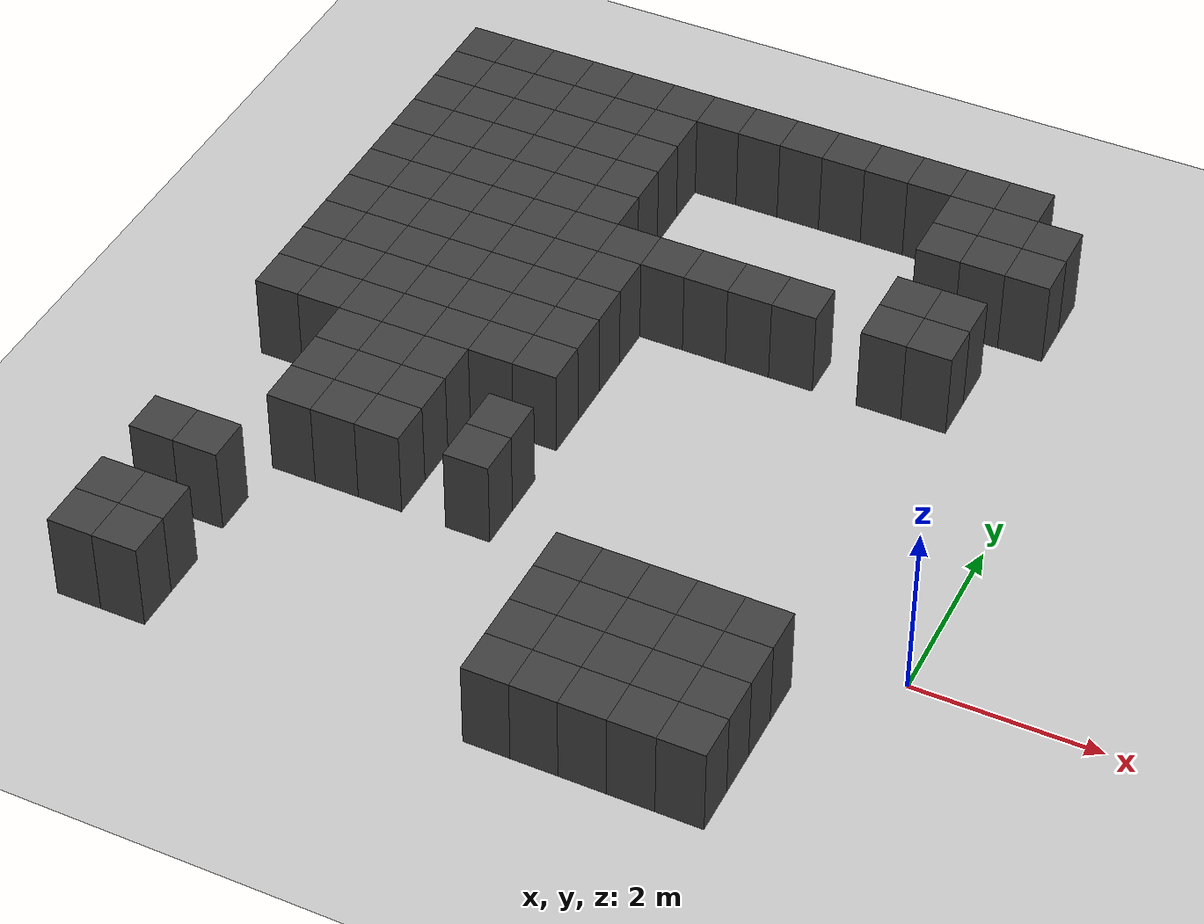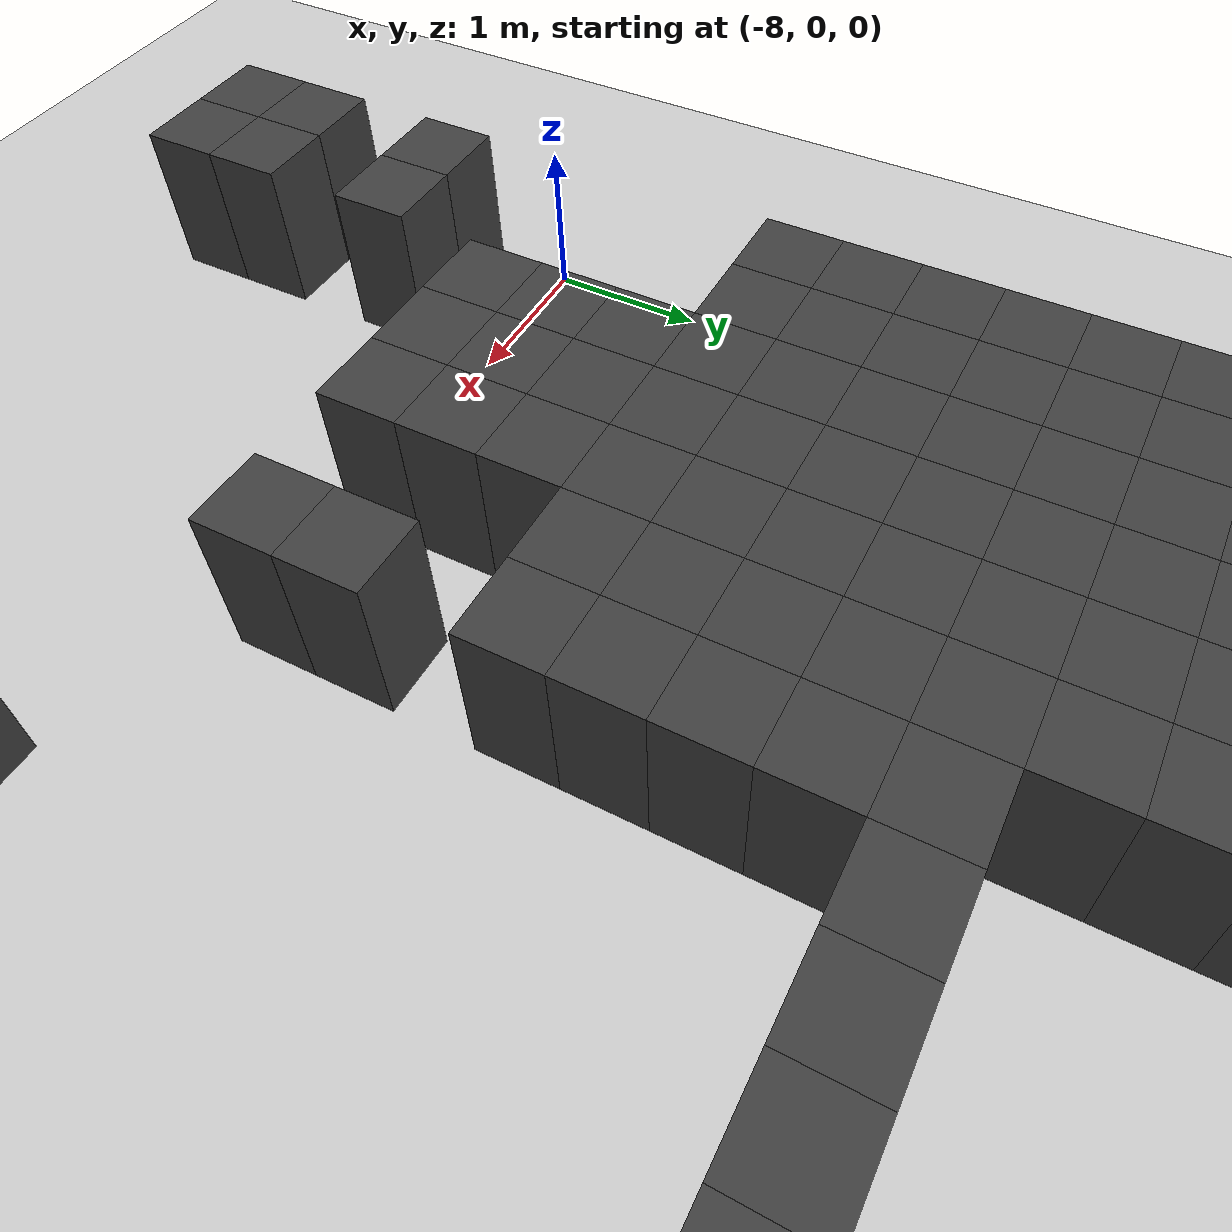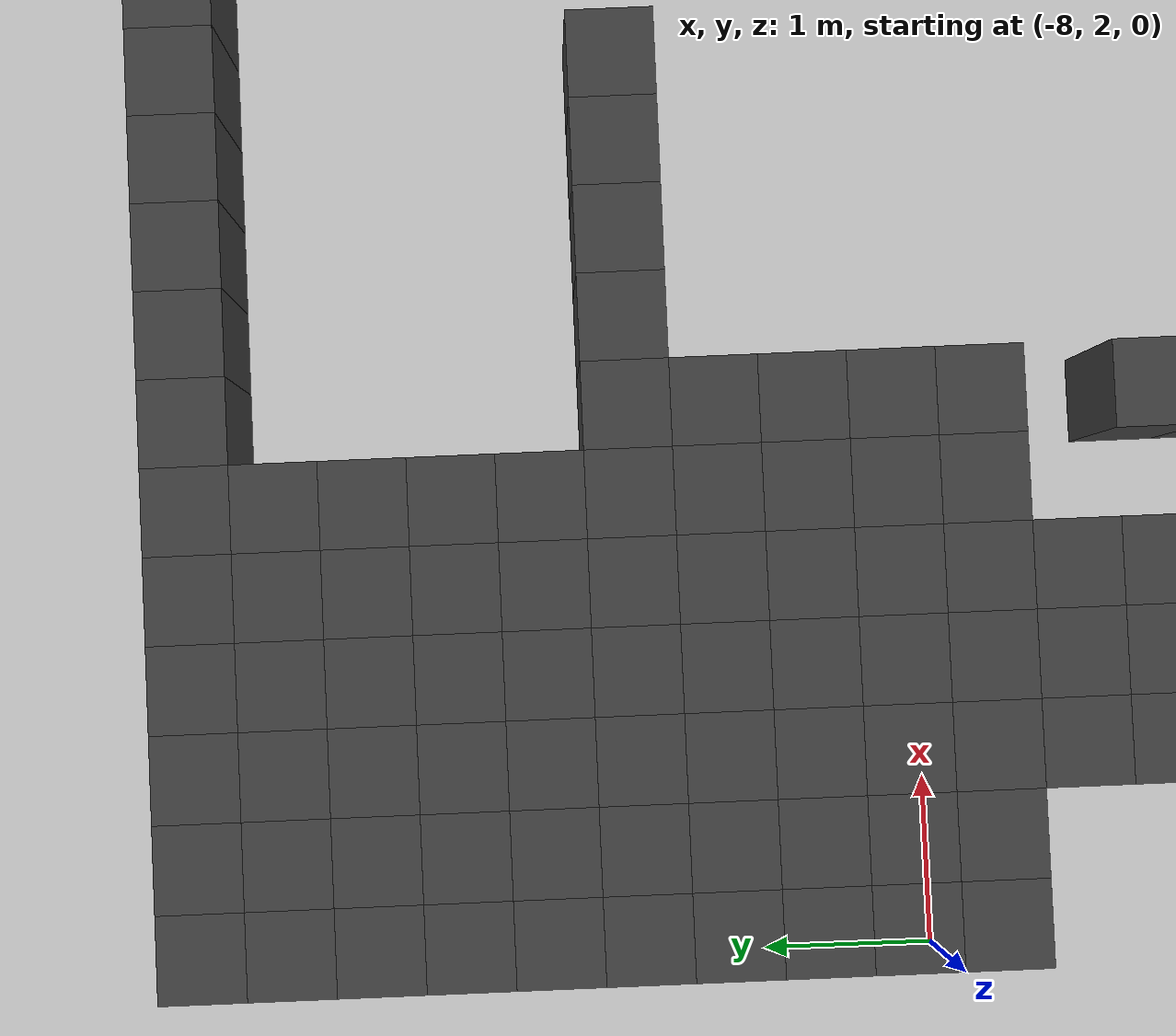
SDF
<sdf version="1.7">
 <world name="map_13364">
  <model name="ground_plane">
   <static>true</static>
   <link name="link">
    <collision name="collision">
     <geometry><plane><normal>0 0 1</normal><size>200 200</size></plane></geometry>
    </collision>
    <visual name="visual">
     <geometry><plane><normal>0 0 1</normal><size>200 200</size></plane></geometry>
     <material><ambient>0.8 0.8 0.8 1</ambient><diffuse>0.8 0.8 0.8 1</diffuse></material>
    </visual>
   </link>
  </model>
  <model name="maze_environment">
   <static>true</static>
   <link name="wall_544">
    <pose>-7.750 6.250 0.500 0 0 0</pose>
    <collision name="col"><geometry><box><size>0.5 0.5 1.0</size></box></geometry></collision>
    <visual name="vis">
     <geometry><box><size>0.5 0.5 1.0</size></box></geometry>
     <material><ambient>0.15 0.15 0.15 1</ambient><diffuse>0.25 0.25 0.25 1</diffuse></material>
    </visual>
   </link>
   <link name="wall_545">
    <pose>-7.250 6.250 0.500 0 0 0</pose>
    <collision name="col"><geometry><box><size>0.5 0.5 1.0</size></box></geometry></collision>
    <visual name="vis">
     <geometry><box><size>0.5 0.5 1.0</size></box></geometry>
     <material><ambient>0.15 0.15 0.15 1</ambient><diffuse>0.25 0.25 0.25 1</diffuse></material>
    </visual>
   </link>
   <link name="wall_546">
    <pose>-6.750 6.250 0.500 0 0 0</pose>
    <collision name="col"><geometry><box><size>0.5 0.5 1.0</size></box></geometry></collision>
    <visual name="vis">
     <geometry><box><size>0.5 0.5 1.0</size></box></geometry>
     <material><ambient>0.15 0.15 0.15 1</ambient><diffuse>0.25 0.25 0.25 1</diffuse></material>
    </visual>
   </link>
   <link name="wall_547">
    <pose>-6.250 6.250 0.500 0 0 0</pose>
    <collision name="col"><geometry><box><size>0.5 0.5 1.0</size></box></geometry></collision>
    <visual name="vis">
     <geometry><box><size>0.5 0.5 1.0</size></box></geometry>
     <material><ambient>0.15 0.15 0.15 1</ambient><diffuse>0.25 0.25 0.25 1</diffuse></material>
    </visual>
   </link>
   <link name="wall_548">
    <pose>-5.750 6.250 0.500 0 0 0</pose>
    <collision name="col"><geometry><box><size>0.5 0.5 1.0</size></box></geometry></collision>
    <visual name="vis">
     <geometry><box><size>0.5 0.5 1.0</size></box></geometry>
     <material><ambient>0.15 0.15 0.15 1</ambient><diffuse>0.25 0.25 0.25 1</diffuse></material>
    </visual>
   </link>
   <link name="wall_549">
    <pose>-5.250 6.250 0.500 0 0 0</pose>
    <collision name="col"><geometry><box><size>0.5 0.5 1.0</size></box></geometry></collision>
    <visual name="vis">
     <geometry><box><size>0.5 0.5 1.0</size></box></geometry>
     <material><ambient>0.15 0.15 0.15 1</ambient><diffuse>0.25 0.25 0.25 1</diffuse></material>
    </visual>
   </link>
   <link name="wall_550">
    <pose>-4.750 6.250 0.500 0 0 0</pose>
    <collision name="col"><geometry><box><size>0.5 0.5 1.0</size></box></geometry></collision>
    <visual name="vis">
     <geometry><box><size>0.5 0.5 1.0</size></box></geometry>
     <material><ambient>0.15 0.15 0.15 1</ambient><diffuse>0.25 0.25 0.25 1</diffuse></material>
    </visual>
   </link>
   <link name="wall_551">
    <pose>-4.250 6.250 0.500 0 0 0</pose>
    <collision name="col"><geometry><box><size>0.5 0.5 1.0</size></box></geometry></collision>
    <visual name="vis">
     <geometry><box><size>0.5 0.5 1.0</size></box></geometry>
     <material><ambient>0.15 0.15 0.15 1</ambient><diffuse>0.25 0.25 0.25 1</diffuse></material>
    </visual>
   </link>
   <link name="wall_552">
    <pose>-3.750 6.250 0.500 0 0 0</pose>
    <collision name="col"><geometry><box><size>0.5 0.5 1.0</size></box></geometry></collision>
    <visual name="vis">
     <geometry><box><size>0.5 0.5 1.0</size></box></geometry>
     <material><ambient>0.15 0.15 0.15 1</ambient><diffuse>0.25 0.25 0.25 1</diffuse></material>
    </visual>
   </link>
   <link name="wall_553">
    <pose>-3.250 6.250 0.500 0 0 0</pose>
    <collision name="col"><geometry><box><size>0.5 0.5 1.0</size></box></geometry></collision>
    <visual name="vis">
     <geometry><box><size>0.5 0.5 1.0</size></box></geometry>
     <material><ambient>0.15 0.15 0.15 1</ambient><diffuse>0.25 0.25 0.25 1</diffuse></material>
    </visual>
   </link>
   <link name="wall_554">
    <pose>-2.750 6.250 0.500 0 0 0</pose>
    <collision name="col"><geometry><box><size>0.5 0.5 1.0</size></box></geometry></collision>
    <visual name="vis">
     <geometry><box><size>0.5 0.5 1.0</size></box></geometry>
     <material><ambient>0.15 0.15 0.15 1</ambient><diffuse>0.25 0.25 0.25 1</diffuse></material>
    </visual>
   </link>
   <link name="wall_555">
    <pose>-2.250 6.250 0.500 0 0 0</pose>
    <collision name="col"><geometry><box><size>0.5 0.5 1.0</size></box></geometry></collision>
    <visual name="vis">
     <geometry><box><size>0.5 0.5 1.0</size></box></geometry>
     <material><ambient>0.15 0.15 0.15 1</ambient><diffuse>0.25 0.25 0.25 1</diffuse></material>
    </visual>
   </link>
   <link name="wall_556">
    <pose>-1.750 6.250 0.500 0 0 0</pose>
    <collision name="col"><geometry><box><size>0.5 0.5 1.0</size></box></geometry></collision>
    <visual name="vis">
     <geometry><box><size>0.5 0.5 1.0</size></box></geometry>
     <material><ambient>0.15 0.15 0.15 1</ambient><diffuse>0.25 0.25 0.25 1</diffuse></material>
    </visual>
   </link>
   <link name="wall_557">
    <pose>-1.250 6.250 0.500 0 0 0</pose>
    <collision name="col"><geometry><box><size>0.5 0.5 1.0</size></box></geometry></collision>
    <visual name="vis">
     <geometry><box><size>0.5 0.5 1.0</size></box></geometry>
     <material><ambient>0.15 0.15 0.15 1</ambient><diffuse>0.25 0.25 0.25 1</diffuse></material>
    </visual>
   </link>
   <link name="wall_576">
    <pose>-7.750 5.750 0.500 0 0 0</pose>
    <collision name="col"><geometry><box><size>0.5 0.5 1.0</size></box></geometry></collision>
    <visual name="vis">
     <geometry><box><size>0.5 0.5 1.0</size></box></geometry>
     <material><ambient>0.15 0.15 0.15 1</ambient><diffuse>0.25 0.25 0.25 1</diffuse></material>
    </visual>
   </link>
   <link name="wall_577">
    <pose>-7.250 5.750 0.500 0 0 0</pose>
    <collision name="col"><geometry><box><size>0.5 0.5 1.0</size></box></geometry></collision>
    <visual name="vis">
     <geometry><box><size>0.5 0.5 1.0</size></box></geometry>
     <material><ambient>0.15 0.15 0.15 1</ambient><diffuse>0.25 0.25 0.25 1</diffuse></material>
    </visual>
   </link>
   <link name="wall_578">
    <pose>-6.750 5.750 0.500 0 0 0</pose>
    <collision name="col"><geometry><box><size>0.5 0.5 1.0</size></box></geometry></collision>
    <visual name="vis">
     <geometry><box><size>0.5 0.5 1.0</size></box></geometry>
     <material><ambient>0.15 0.15 0.15 1</ambient><diffuse>0.25 0.25 0.25 1</diffuse></material>
    </visual>
   </link>
   <link name="wall_579">
    <pose>-6.250 5.750 0.500 0 0 0</pose>
    <collision name="col"><geometry><box><size>0.5 0.5 1.0</size></box></geometry></collision>
    <visual name="vis">
     <geometry><box><size>0.5 0.5 1.0</size></box></geometry>
     <material><ambient>0.15 0.15 0.15 1</ambient><diffuse>0.25 0.25 0.25 1</diffuse></material>
    </visual>
   </link>
   <link name="wall_580">
    <pose>-5.750 5.750 0.500 0 0 0</pose>
    <collision name="col"><geometry><box><size>0.5 0.5 1.0</size></box></geometry></collision>
    <visual name="vis">
     <geometry><box><size>0.5 0.5 1.0</size></box></geometry>
     <material><ambient>0.15 0.15 0.15 1</ambient><diffuse>0.25 0.25 0.25 1</diffuse></material>
    </visual>
   </link>
   <link name="wall_581">
    <pose>-5.250 5.750 0.500 0 0 0</pose>
    <collision name="col"><geometry><box><size>0.5 0.5 1.0</size></box></geometry></collision>
    <visual name="vis">
     <geometry><box><size>0.5 0.5 1.0</size></box></geometry>
     <material><ambient>0.15 0.15 0.15 1</ambient><diffuse>0.25 0.25 0.25 1</diffuse></material>
    </visual>
   </link>
   <link name="wall_582">
    <pose>-1.750 5.750 0.500 0 0 0</pose>
    <collision name="col"><geometry><box><size>0.5 0.5 1.0</size></box></geometry></collision>
    <visual name="vis">
     <geometry><box><size>0.5 0.5 1.0</size></box></geometry>
     <material><ambient>0.15 0.15 0.15 1</ambient><diffuse>0.25 0.25 0.25 1</diffuse></material>
    </visual>
   </link>
   <link name="wall_583">
    <pose>-1.250 5.750 0.500 0 0 0</pose>
    <collision name="col"><geometry><box><size>0.5 0.5 1.0</size></box></geometry></collision>
    <visual name="vis">
     <geometry><box><size>0.5 0.5 1.0</size></box></geometry>
     <material><ambient>0.15 0.15 0.15 1</ambient><diffuse>0.25 0.25 0.25 1</diffuse></material>
    </visual>
   </link>
   <link name="wall_584">
    <pose>-0.750 5.750 0.500 0 0 0</pose>
    <collision name="col"><geometry><box><size>0.5 0.5 1.0</size></box></geometry></collision>
    <visual name="vis">
     <geometry><box><size>0.5 0.5 1.0</size></box></geometry>
     <material><ambient>0.15 0.15 0.15 1</ambient><diffuse>0.25 0.25 0.25 1</diffuse></material>
    </visual>
   </link>
   <link name="wall_603">
    <pose>-7.750 5.250 0.500 0 0 0</pose>
    <collision name="col"><geometry><box><size>0.5 0.5 1.0</size></box></geometry></collision>
    <visual name="vis">
     <geometry><box><size>0.5 0.5 1.0</size></box></geometry>
     <material><ambient>0.15 0.15 0.15 1</ambient><diffuse>0.25 0.25 0.25 1</diffuse></material>
    </visual>
   </link>
   <link name="wall_604">
    <pose>-7.250 5.250 0.500 0 0 0</pose>
    <collision name="col"><geometry><box><size>0.5 0.5 1.0</size></box></geometry></collision>
    <visual name="vis">
     <geometry><box><size>0.5 0.5 1.0</size></box></geometry>
     <material><ambient>0.15 0.15 0.15 1</ambient><diffuse>0.25 0.25 0.25 1</diffuse></material>
    </visual>
   </link>
   <link name="wall_605">
    <pose>-6.750 5.250 0.500 0 0 0</pose>
    <collision name="col"><geometry><box><size>0.5 0.5 1.0</size></box></geometry></collision>
    <visual name="vis">
     <geometry><box><size>0.5 0.5 1.0</size></box></geometry>
     <material><ambient>0.15 0.15 0.15 1</ambient><diffuse>0.25 0.25 0.25 1</diffuse></material>
    </visual>
   </link>
   <link name="wall_606">
    <pose>-6.250 5.250 0.500 0 0 0</pose>
    <collision name="col"><geometry><box><size>0.5 0.5 1.0</size></box></geometry></collision>
    <visual name="vis">
     <geometry><box><size>0.5 0.5 1.0</size></box></geometry>
     <material><ambient>0.15 0.15 0.15 1</ambient><diffuse>0.25 0.25 0.25 1</diffuse></material>
    </visual>
   </link>
   <link name="wall_607">
    <pose>-5.750 5.250 0.500 0 0 0</pose>
    <collision name="col"><geometry><box><size>0.5 0.5 1.0</size></box></geometry></collision>
    <visual name="vis">
     <geometry><box><size>0.5 0.5 1.0</size></box></geometry>
     <material><ambient>0.15 0.15 0.15 1</ambient><diffuse>0.25 0.25 0.25 1</diffuse></material>
    </visual>
   </link>
   <link name="wall_608">
    <pose>-5.250 5.250 0.500 0 0 0</pose>
    <collision name="col"><geometry><box><size>0.5 0.5 1.0</size></box></geometry></collision>
    <visual name="vis">
     <geometry><box><size>0.5 0.5 1.0</size></box></geometry>
     <material><ambient>0.15 0.15 0.15 1</ambient><diffuse>0.25 0.25 0.25 1</diffuse></material>
    </visual>
   </link>
   <link name="wall_609">
    <pose>-1.750 5.250 0.500 0 0 0</pose>
    <collision name="col"><geometry><box><size>0.5 0.5 1.0</size></box></geometry></collision>
    <visual name="vis">
     <geometry><box><size>0.5 0.5 1.0</size></box></geometry>
     <material><ambient>0.15 0.15 0.15 1</ambient><diffuse>0.25 0.25 0.25 1</diffuse></material>
    </visual>
   </link>
   <link name="wall_610">
    <pose>-1.250 5.250 0.500 0 0 0</pose>
    <collision name="col"><geometry><box><size>0.5 0.5 1.0</size></box></geometry></collision>
    <visual name="vis">
     <geometry><box><size>0.5 0.5 1.0</size></box></geometry>
     <material><ambient>0.15 0.15 0.15 1</ambient><diffuse>0.25 0.25 0.25 1</diffuse></material>
    </visual>
   </link>
   <link name="wall_611">
    <pose>-0.750 5.250 0.500 0 0 0</pose>
    <collision name="col"><geometry><box><size>0.5 0.5 1.0</size></box></geometry></collision>
    <visual name="vis">
     <geometry><box><size>0.5 0.5 1.0</size></box></geometry>
     <material><ambient>0.15 0.15 0.15 1</ambient><diffuse>0.25 0.25 0.25 1</diffuse></material>
    </visual>
   </link>
   <link name="wall_637">
    <pose>-7.750 4.750 0.500 0 0 0</pose>
    <collision name="col"><geometry><box><size>0.5 0.5 1.0</size></box></geometry></collision>
    <visual name="vis">
     <geometry><box><size>0.5 0.5 1.0</size></box></geometry>
     <material><ambient>0.15 0.15 0.15 1</ambient><diffuse>0.25 0.25 0.25 1</diffuse></material>
    </visual>
   </link>
   <link name="wall_638">
    <pose>-7.250 4.750 0.500 0 0 0</pose>
    <collision name="col"><geometry><box><size>0.5 0.5 1.0</size></box></geometry></collision>
    <visual name="vis">
     <geometry><box><size>0.5 0.5 1.0</size></box></geometry>
     <material><ambient>0.15 0.15 0.15 1</ambient><diffuse>0.25 0.25 0.25 1</diffuse></material>
    </visual>
   </link>
   <link name="wall_639">
    <pose>-6.750 4.750 0.500 0 0 0</pose>
    <collision name="col"><geometry><box><size>0.5 0.5 1.0</size></box></geometry></collision>
    <visual name="vis">
     <geometry><box><size>0.5 0.5 1.0</size></box></geometry>
     <material><ambient>0.15 0.15 0.15 1</ambient><diffuse>0.25 0.25 0.25 1</diffuse></material>
    </visual>
   </link>
   <link name="wall_640">
    <pose>-6.250 4.750 0.500 0 0 0</pose>
    <collision name="col"><geometry><box><size>0.5 0.5 1.0</size></box></geometry></collision>
    <visual name="vis">
     <geometry><box><size>0.5 0.5 1.0</size></box></geometry>
     <material><ambient>0.15 0.15 0.15 1</ambient><diffuse>0.25 0.25 0.25 1</diffuse></material>
    </visual>
   </link>
   <link name="wall_641">
    <pose>-5.750 4.750 0.500 0 0 0</pose>
    <collision name="col"><geometry><box><size>0.5 0.5 1.0</size></box></geometry></collision>
    <visual name="vis">
     <geometry><box><size>0.5 0.5 1.0</size></box></geometry>
     <material><ambient>0.15 0.15 0.15 1</ambient><diffuse>0.25 0.25 0.25 1</diffuse></material>
    </visual>
   </link>
   <link name="wall_642">
    <pose>-5.250 4.750 0.500 0 0 0</pose>
    <collision name="col"><geometry><box><size>0.5 0.5 1.0</size></box></geometry></collision>
    <visual name="vis">
     <geometry><box><size>0.5 0.5 1.0</size></box></geometry>
     <material><ambient>0.15 0.15 0.15 1</ambient><diffuse>0.25 0.25 0.25 1</diffuse></material>
    </visual>
   </link>
   <link name="wall_657">
    <pose>-7.750 4.250 0.500 0 0 0</pose>
    <collision name="col"><geometry><box><size>0.5 0.5 1.0</size></box></geometry></collision>
    <visual name="vis">
     <geometry><box><size>0.5 0.5 1.0</size></box></geometry>
     <material><ambient>0.15 0.15 0.15 1</ambient><diffuse>0.25 0.25 0.25 1</diffuse></material>
    </visual>
   </link>
   <link name="wall_658">
    <pose>-7.250 4.250 0.500 0 0 0</pose>
    <collision name="col"><geometry><box><size>0.5 0.5 1.0</size></box></geometry></collision>
    <visual name="vis">
     <geometry><box><size>0.5 0.5 1.0</size></box></geometry>
     <material><ambient>0.15 0.15 0.15 1</ambient><diffuse>0.25 0.25 0.25 1</diffuse></material>
    </visual>
   </link>
   <link name="wall_659">
    <pose>-6.750 4.250 0.500 0 0 0</pose>
    <collision name="col"><geometry><box><size>0.5 0.5 1.0</size></box></geometry></collision>
    <visual name="vis">
     <geometry><box><size>0.5 0.5 1.0</size></box></geometry>
     <material><ambient>0.15 0.15 0.15 1</ambient><diffuse>0.25 0.25 0.25 1</diffuse></material>
    </visual>
   </link>
   <link name="wall_660">
    <pose>-6.250 4.250 0.500 0 0 0</pose>
    <collision name="col"><geometry><box><size>0.5 0.5 1.0</size></box></geometry></collision>
    <visual name="vis">
     <geometry><box><size>0.5 0.5 1.0</size></box></geometry>
     <material><ambient>0.15 0.15 0.15 1</ambient><diffuse>0.25 0.25 0.25 1</diffuse></material>
    </visual>
   </link>
   <link name="wall_661">
    <pose>-5.750 4.250 0.500 0 0 0</pose>
    <collision name="col"><geometry><box><size>0.5 0.5 1.0</size></box></geometry></collision>
    <visual name="vis">
     <geometry><box><size>0.5 0.5 1.0</size></box></geometry>
     <material><ambient>0.15 0.15 0.15 1</ambient><diffuse>0.25 0.25 0.25 1</diffuse></material>
    </visual>
   </link>
   <link name="wall_662">
    <pose>-5.250 4.250 0.500 0 0 0</pose>
    <collision name="col"><geometry><box><size>0.5 0.5 1.0</size></box></geometry></collision>
    <visual name="vis">
     <geometry><box><size>0.5 0.5 1.0</size></box></geometry>
     <material><ambient>0.15 0.15 0.15 1</ambient><diffuse>0.25 0.25 0.25 1</diffuse></material>
    </visual>
   </link>
   <link name="wall_663">
    <pose>-1.750 4.250 0.500 0 0 0</pose>
    <collision name="col"><geometry><box><size>0.5 0.5 1.0</size></box></geometry></collision>
    <visual name="vis">
     <geometry><box><size>0.5 0.5 1.0</size></box></geometry>
     <material><ambient>0.15 0.15 0.15 1</ambient><diffuse>0.25 0.25 0.25 1</diffuse></material>
    </visual>
   </link>
   <link name="wall_664">
    <pose>-1.250 4.250 0.500 0 0 0</pose>
    <collision name="col"><geometry><box><size>0.5 0.5 1.0</size></box></geometry></collision>
    <visual name="vis">
     <geometry><box><size>0.5 0.5 1.0</size></box></geometry>
     <material><ambient>0.15 0.15 0.15 1</ambient><diffuse>0.25 0.25 0.25 1</diffuse></material>
    </visual>
   </link>
   <link name="wall_684">
    <pose>-7.750 3.750 0.500 0 0 0</pose>
    <collision name="col"><geometry><box><size>0.5 0.5 1.0</size></box></geometry></collision>
    <visual name="vis">
     <geometry><box><size>0.5 0.5 1.0</size></box></geometry>
     <material><ambient>0.15 0.15 0.15 1</ambient><diffuse>0.25 0.25 0.25 1</diffuse></material>
    </visual>
   </link>
   <link name="wall_685">
    <pose>-7.250 3.750 0.500 0 0 0</pose>
    <collision name="col"><geometry><box><size>0.5 0.5 1.0</size></box></geometry></collision>
    <visual name="vis">
     <geometry><box><size>0.5 0.5 1.0</size></box></geometry>
     <material><ambient>0.15 0.15 0.15 1</ambient><diffuse>0.25 0.25 0.25 1</diffuse></material>
    </visual>
   </link>
   <link name="wall_686">
    <pose>-6.750 3.750 0.500 0 0 0</pose>
    <collision name="col"><geometry><box><size>0.5 0.5 1.0</size></box></geometry></collision>
    <visual name="vis">
     <geometry><box><size>0.5 0.5 1.0</size></box></geometry>
     <material><ambient>0.15 0.15 0.15 1</ambient><diffuse>0.25 0.25 0.25 1</diffuse></material>
    </visual>
   </link>
   <link name="wall_687">
    <pose>-6.250 3.750 0.500 0 0 0</pose>
    <collision name="col"><geometry><box><size>0.5 0.5 1.0</size></box></geometry></collision>
    <visual name="vis">
     <geometry><box><size>0.5 0.5 1.0</size></box></geometry>
     <material><ambient>0.15 0.15 0.15 1</ambient><diffuse>0.25 0.25 0.25 1</diffuse></material>
    </visual>
   </link>
   <link name="wall_688">
    <pose>-5.750 3.750 0.500 0 0 0</pose>
    <collision name="col"><geometry><box><size>0.5 0.5 1.0</size></box></geometry></collision>
    <visual name="vis">
     <geometry><box><size>0.5 0.5 1.0</size></box></geometry>
     <material><ambient>0.15 0.15 0.15 1</ambient><diffuse>0.25 0.25 0.25 1</diffuse></material>
    </visual>
   </link>
   <link name="wall_689">
    <pose>-5.250 3.750 0.500 0 0 0</pose>
    <collision name="col"><geometry><box><size>0.5 0.5 1.0</size></box></geometry></collision>
    <visual name="vis">
     <geometry><box><size>0.5 0.5 1.0</size></box></geometry>
     <material><ambient>0.15 0.15 0.15 1</ambient><diffuse>0.25 0.25 0.25 1</diffuse></material>
    </visual>
   </link>
   <link name="wall_690">
    <pose>-4.750 3.750 0.500 0 0 0</pose>
    <collision name="col"><geometry><box><size>0.5 0.5 1.0</size></box></geometry></collision>
    <visual name="vis">
     <geometry><box><size>0.5 0.5 1.0</size></box></geometry>
     <material><ambient>0.15 0.15 0.15 1</ambient><diffuse>0.25 0.25 0.25 1</diffuse></material>
    </visual>
   </link>
   <link name="wall_691">
    <pose>-4.250 3.750 0.500 0 0 0</pose>
    <collision name="col"><geometry><box><size>0.5 0.5 1.0</size></box></geometry></collision>
    <visual name="vis">
     <geometry><box><size>0.5 0.5 1.0</size></box></geometry>
     <material><ambient>0.15 0.15 0.15 1</ambient><diffuse>0.25 0.25 0.25 1</diffuse></material>
    </visual>
   </link>
   <link name="wall_692">
    <pose>-3.750 3.750 0.500 0 0 0</pose>
    <collision name="col"><geometry><box><size>0.5 0.5 1.0</size></box></geometry></collision>
    <visual name="vis">
     <geometry><box><size>0.5 0.5 1.0</size></box></geometry>
     <material><ambient>0.15 0.15 0.15 1</ambient><diffuse>0.25 0.25 0.25 1</diffuse></material>
    </visual>
   </link>
   <link name="wall_693">
    <pose>-3.250 3.750 0.500 0 0 0</pose>
    <collision name="col"><geometry><box><size>0.5 0.5 1.0</size></box></geometry></collision>
    <visual name="vis">
     <geometry><box><size>0.5 0.5 1.0</size></box></geometry>
     <material><ambient>0.15 0.15 0.15 1</ambient><diffuse>0.25 0.25 0.25 1</diffuse></material>
    </visual>
   </link>
   <link name="wall_694">
    <pose>-2.750 3.750 0.500 0 0 0</pose>
    <collision name="col"><geometry><box><size>0.5 0.5 1.0</size></box></geometry></collision>
    <visual name="vis">
     <geometry><box><size>0.5 0.5 1.0</size></box></geometry>
     <material><ambient>0.15 0.15 0.15 1</ambient><diffuse>0.25 0.25 0.25 1</diffuse></material>
    </visual>
   </link>
   <link name="wall_695">
    <pose>-1.750 3.750 0.500 0 0 0</pose>
    <collision name="col"><geometry><box><size>0.5 0.5 1.0</size></box></geometry></collision>
    <visual name="vis">
     <geometry><box><size>0.5 0.5 1.0</size></box></geometry>
     <material><ambient>0.15 0.15 0.15 1</ambient><diffuse>0.25 0.25 0.25 1</diffuse></material>
    </visual>
   </link>
   <link name="wall_696">
    <pose>-1.250 3.750 0.500 0 0 0</pose>
    <collision name="col"><geometry><box><size>0.5 0.5 1.0</size></box></geometry></collision>
    <visual name="vis">
     <geometry><box><size>0.5 0.5 1.0</size></box></geometry>
     <material><ambient>0.15 0.15 0.15 1</ambient><diffuse>0.25 0.25 0.25 1</diffuse></material>
    </visual>
   </link>
   <link name="wall_716">
    <pose>-7.750 3.250 0.500 0 0 0</pose>
    <collision name="col"><geometry><box><size>0.5 0.5 1.0</size></box></geometry></collision>
    <visual name="vis">
     <geometry><box><size>0.5 0.5 1.0</size></box></geometry>
     <material><ambient>0.15 0.15 0.15 1</ambient><diffuse>0.25 0.25 0.25 1</diffuse></material>
    </visual>
   </link>
   <link name="wall_717">
    <pose>-7.250 3.250 0.500 0 0 0</pose>
    <collision name="col"><geometry><box><size>0.5 0.5 1.0</size></box></geometry></collision>
    <visual name="vis">
     <geometry><box><size>0.5 0.5 1.0</size></box></geometry>
     <material><ambient>0.15 0.15 0.15 1</ambient><diffuse>0.25 0.25 0.25 1</diffuse></material>
    </visual>
   </link>
   <link name="wall_718">
    <pose>-6.750 3.250 0.500 0 0 0</pose>
    <collision name="col"><geometry><box><size>0.5 0.5 1.0</size></box></geometry></collision>
    <visual name="vis">
     <geometry><box><size>0.5 0.5 1.0</size></box></geometry>
     <material><ambient>0.15 0.15 0.15 1</ambient><diffuse>0.25 0.25 0.25 1</diffuse></material>
    </visual>
   </link>
   <link name="wall_719">
    <pose>-6.250 3.250 0.500 0 0 0</pose>
    <collision name="col"><geometry><box><size>0.5 0.5 1.0</size></box></geometry></collision>
    <visual name="vis">
     <geometry><box><size>0.5 0.5 1.0</size></box></geometry>
     <material><ambient>0.15 0.15 0.15 1</ambient><diffuse>0.25 0.25 0.25 1</diffuse></material>
    </visual>
   </link>
   <link name="wall_720">
    <pose>-5.750 3.250 0.500 0 0 0</pose>
    <collision name="col"><geometry><box><size>0.5 0.5 1.0</size></box></geometry></collision>
    <visual name="vis">
     <geometry><box><size>0.5 0.5 1.0</size></box></geometry>
     <material><ambient>0.15 0.15 0.15 1</ambient><diffuse>0.25 0.25 0.25 1</diffuse></material>
    </visual>
   </link>
   <link name="wall_721">
    <pose>-5.250 3.250 0.500 0 0 0</pose>
    <collision name="col"><geometry><box><size>0.5 0.5 1.0</size></box></geometry></collision>
    <visual name="vis">
     <geometry><box><size>0.5 0.5 1.0</size></box></geometry>
     <material><ambient>0.15 0.15 0.15 1</ambient><diffuse>0.25 0.25 0.25 1</diffuse></material>
    </visual>
   </link>
   <link name="wall_722">
    <pose>-4.750 3.250 0.500 0 0 0</pose>
    <collision name="col"><geometry><box><size>0.5 0.5 1.0</size></box></geometry></collision>
    <visual name="vis">
     <geometry><box><size>0.5 0.5 1.0</size></box></geometry>
     <material><ambient>0.15 0.15 0.15 1</ambient><diffuse>0.25 0.25 0.25 1</diffuse></material>
    </visual>
   </link>
   <link name="wall_749">
    <pose>-7.750 2.750 0.500 0 0 0</pose>
    <collision name="col"><geometry><box><size>0.5 0.5 1.0</size></box></geometry></collision>
    <visual name="vis">
     <geometry><box><size>0.5 0.5 1.0</size></box></geometry>
     <material><ambient>0.15 0.15 0.15 1</ambient><diffuse>0.25 0.25 0.25 1</diffuse></material>
    </visual>
   </link>
   <link name="wall_750">
    <pose>-7.250 2.750 0.500 0 0 0</pose>
    <collision name="col"><geometry><box><size>0.5 0.5 1.0</size></box></geometry></collision>
    <visual name="vis">
     <geometry><box><size>0.5 0.5 1.0</size></box></geometry>
     <material><ambient>0.15 0.15 0.15 1</ambient><diffuse>0.25 0.25 0.25 1</diffuse></material>
    </visual>
   </link>
   <link name="wall_751">
    <pose>-6.750 2.750 0.500 0 0 0</pose>
    <collision name="col"><geometry><box><size>0.5 0.5 1.0</size></box></geometry></collision>
    <visual name="vis">
     <geometry><box><size>0.5 0.5 1.0</size></box></geometry>
     <material><ambient>0.15 0.15 0.15 1</ambient><diffuse>0.25 0.25 0.25 1</diffuse></material>
    </visual>
   </link>
   <link name="wall_752">
    <pose>-6.250 2.750 0.500 0 0 0</pose>
    <collision name="col"><geometry><box><size>0.5 0.5 1.0</size></box></geometry></collision>
    <visual name="vis">
     <geometry><box><size>0.5 0.5 1.0</size></box></geometry>
     <material><ambient>0.15 0.15 0.15 1</ambient><diffuse>0.25 0.25 0.25 1</diffuse></material>
    </visual>
   </link>
   <link name="wall_753">
    <pose>-5.750 2.750 0.500 0 0 0</pose>
    <collision name="col"><geometry><box><size>0.5 0.5 1.0</size></box></geometry></collision>
    <visual name="vis">
     <geometry><box><size>0.5 0.5 1.0</size></box></geometry>
     <material><ambient>0.15 0.15 0.15 1</ambient><diffuse>0.25 0.25 0.25 1</diffuse></material>
    </visual>
   </link>
   <link name="wall_754">
    <pose>-5.250 2.750 0.500 0 0 0</pose>
    <collision name="col"><geometry><box><size>0.5 0.5 1.0</size></box></geometry></collision>
    <visual name="vis">
     <geometry><box><size>0.5 0.5 1.0</size></box></geometry>
     <material><ambient>0.15 0.15 0.15 1</ambient><diffuse>0.25 0.25 0.25 1</diffuse></material>
    </visual>
   </link>
   <link name="wall_755">
    <pose>-4.750 2.750 0.500 0 0 0</pose>
    <collision name="col"><geometry><box><size>0.5 0.5 1.0</size></box></geometry></collision>
    <visual name="vis">
     <geometry><box><size>0.5 0.5 1.0</size></box></geometry>
     <material><ambient>0.15 0.15 0.15 1</ambient><diffuse>0.25 0.25 0.25 1</diffuse></material>
    </visual>
   </link>
   <link name="wall_780">
    <pose>-7.750 2.250 0.500 0 0 0</pose>
    <collision name="col"><geometry><box><size>0.5 0.5 1.0</size></box></geometry></collision>
    <visual name="vis">
     <geometry><box><size>0.5 0.5 1.0</size></box></geometry>
     <material><ambient>0.15 0.15 0.15 1</ambient><diffuse>0.25 0.25 0.25 1</diffuse></material>
    </visual>
   </link>
   <link name="wall_781">
    <pose>-7.250 2.250 0.500 0 0 0</pose>
    <collision name="col"><geometry><box><size>0.5 0.5 1.0</size></box></geometry></collision>
    <visual name="vis">
     <geometry><box><size>0.5 0.5 1.0</size></box></geometry>
     <material><ambient>0.15 0.15 0.15 1</ambient><diffuse>0.25 0.25 0.25 1</diffuse></material>
    </visual>
   </link>
   <link name="wall_782">
    <pose>-6.750 2.250 0.500 0 0 0</pose>
    <collision name="col"><geometry><box><size>0.5 0.5 1.0</size></box></geometry></collision>
    <visual name="vis">
     <geometry><box><size>0.5 0.5 1.0</size></box></geometry>
     <material><ambient>0.15 0.15 0.15 1</ambient><diffuse>0.25 0.25 0.25 1</diffuse></material>
    </visual>
   </link>
   <link name="wall_783">
    <pose>-6.250 2.250 0.500 0 0 0</pose>
    <collision name="col"><geometry><box><size>0.5 0.5 1.0</size></box></geometry></collision>
    <visual name="vis">
     <geometry><box><size>0.5 0.5 1.0</size></box></geometry>
     <material><ambient>0.15 0.15 0.15 1</ambient><diffuse>0.25 0.25 0.25 1</diffuse></material>
    </visual>
   </link>
   <link name="wall_784">
    <pose>-5.750 2.250 0.500 0 0 0</pose>
    <collision name="col"><geometry><box><size>0.5 0.5 1.0</size></box></geometry></collision>
    <visual name="vis">
     <geometry><box><size>0.5 0.5 1.0</size></box></geometry>
     <material><ambient>0.15 0.15 0.15 1</ambient><diffuse>0.25 0.25 0.25 1</diffuse></material>
    </visual>
   </link>
   <link name="wall_785">
    <pose>-5.250 2.250 0.500 0 0 0</pose>
    <collision name="col"><geometry><box><size>0.5 0.5 1.0</size></box></geometry></collision>
    <visual name="vis">
     <geometry><box><size>0.5 0.5 1.0</size></box></geometry>
     <material><ambient>0.15 0.15 0.15 1</ambient><diffuse>0.25 0.25 0.25 1</diffuse></material>
    </visual>
   </link>
   <link name="wall_786">
    <pose>-4.750 2.250 0.500 0 0 0</pose>
    <collision name="col"><geometry><box><size>0.5 0.5 1.0</size></box></geometry></collision>
    <visual name="vis">
     <geometry><box><size>0.5 0.5 1.0</size></box></geometry>
     <material><ambient>0.15 0.15 0.15 1</ambient><diffuse>0.25 0.25 0.25 1</diffuse></material>
    </visual>
   </link>
   <link name="wall_811">
    <pose>-7.750 1.750 0.500 0 0 0</pose>
    <collision name="col"><geometry><box><size>0.5 0.5 1.0</size></box></geometry></collision>
    <visual name="vis">
     <geometry><box><size>0.5 0.5 1.0</size></box></geometry>
     <material><ambient>0.15 0.15 0.15 1</ambient><diffuse>0.25 0.25 0.25 1</diffuse></material>
    </visual>
   </link>
   <link name="wall_812">
    <pose>-7.250 1.750 0.500 0 0 0</pose>
    <collision name="col"><geometry><box><size>0.5 0.5 1.0</size></box></geometry></collision>
    <visual name="vis">
     <geometry><box><size>0.5 0.5 1.0</size></box></geometry>
     <material><ambient>0.15 0.15 0.15 1</ambient><diffuse>0.25 0.25 0.25 1</diffuse></material>
    </visual>
   </link>
   <link name="wall_813">
    <pose>-6.750 1.750 0.500 0 0 0</pose>
    <collision name="col"><geometry><box><size>0.5 0.5 1.0</size></box></geometry></collision>
    <visual name="vis">
     <geometry><box><size>0.5 0.5 1.0</size></box></geometry>
     <material><ambient>0.15 0.15 0.15 1</ambient><diffuse>0.25 0.25 0.25 1</diffuse></material>
    </visual>
   </link>
   <link name="wall_814">
    <pose>-6.250 1.750 0.500 0 0 0</pose>
    <collision name="col"><geometry><box><size>0.5 0.5 1.0</size></box></geometry></collision>
    <visual name="vis">
     <geometry><box><size>0.5 0.5 1.0</size></box></geometry>
     <material><ambient>0.15 0.15 0.15 1</ambient><diffuse>0.25 0.25 0.25 1</diffuse></material>
    </visual>
   </link>
   <link name="wall_815">
    <pose>-5.750 1.750 0.500 0 0 0</pose>
    <collision name="col"><geometry><box><size>0.5 0.5 1.0</size></box></geometry></collision>
    <visual name="vis">
     <geometry><box><size>0.5 0.5 1.0</size></box></geometry>
     <material><ambient>0.15 0.15 0.15 1</ambient><diffuse>0.25 0.25 0.25 1</diffuse></material>
    </visual>
   </link>
   <link name="wall_816">
    <pose>-5.250 1.750 0.500 0 0 0</pose>
    <collision name="col"><geometry><box><size>0.5 0.5 1.0</size></box></geometry></collision>
    <visual name="vis">
     <geometry><box><size>0.5 0.5 1.0</size></box></geometry>
     <material><ambient>0.15 0.15 0.15 1</ambient><diffuse>0.25 0.25 0.25 1</diffuse></material>
    </visual>
   </link>
   <link name="wall_817">
    <pose>-4.750 1.750 0.500 0 0 0</pose>
    <collision name="col"><geometry><box><size>0.5 0.5 1.0</size></box></geometry></collision>
    <visual name="vis">
     <geometry><box><size>0.5 0.5 1.0</size></box></geometry>
     <material><ambient>0.15 0.15 0.15 1</ambient><diffuse>0.25 0.25 0.25 1</diffuse></material>
    </visual>
   </link>
   <link name="wall_837">
    <pose>-6.750 1.250 0.500 0 0 0</pose>
    <collision name="col"><geometry><box><size>0.5 0.5 1.0</size></box></geometry></collision>
    <visual name="vis">
     <geometry><box><size>0.5 0.5 1.0</size></box></geometry>
     <material><ambient>0.15 0.15 0.15 1</ambient><diffuse>0.25 0.25 0.25 1</diffuse></material>
    </visual>
   </link>
   <link name="wall_838">
    <pose>-6.250 1.250 0.500 0 0 0</pose>
    <collision name="col"><geometry><box><size>0.5 0.5 1.0</size></box></geometry></collision>
    <visual name="vis">
     <geometry><box><size>0.5 0.5 1.0</size></box></geometry>
     <material><ambient>0.15 0.15 0.15 1</ambient><diffuse>0.25 0.25 0.25 1</diffuse></material>
    </visual>
   </link>
   <link name="wall_839">
    <pose>-5.750 1.250 0.500 0 0 0</pose>
    <collision name="col"><geometry><box><size>0.5 0.5 1.0</size></box></geometry></collision>
    <visual name="vis">
     <geometry><box><size>0.5 0.5 1.0</size></box></geometry>
     <material><ambient>0.15 0.15 0.15 1</ambient><diffuse>0.25 0.25 0.25 1</diffuse></material>
    </visual>
   </link>
   <link name="wall_859">
    <pose>-6.750 0.750 0.500 0 0 0</pose>
    <collision name="col"><geometry><box><size>0.5 0.5 1.0</size></box></geometry></collision>
    <visual name="vis">
     <geometry><box><size>0.5 0.5 1.0</size></box></geometry>
     <material><ambient>0.15 0.15 0.15 1</ambient><diffuse>0.25 0.25 0.25 1</diffuse></material>
    </visual>
   </link>
   <link name="wall_860">
    <pose>-6.250 0.750 0.500 0 0 0</pose>
    <collision name="col"><geometry><box><size>0.5 0.5 1.0</size></box></geometry></collision>
    <visual name="vis">
     <geometry><box><size>0.5 0.5 1.0</size></box></geometry>
     <material><ambient>0.15 0.15 0.15 1</ambient><diffuse>0.25 0.25 0.25 1</diffuse></material>
    </visual>
   </link>
   <link name="wall_861">
    <pose>-5.750 0.750 0.500 0 0 0</pose>
    <collision name="col"><geometry><box><size>0.5 0.5 1.0</size></box></geometry></collision>
    <visual name="vis">
     <geometry><box><size>0.5 0.5 1.0</size></box></geometry>
     <material><ambient>0.15 0.15 0.15 1</ambient><diffuse>0.25 0.25 0.25 1</diffuse></material>
    </visual>
   </link>
   <link name="wall_862">
    <pose>-4.750 0.750 0.500 0 0 0</pose>
    <collision name="col"><geometry><box><size>0.5 0.5 1.0</size></box></geometry></collision>
    <visual name="vis">
     <geometry><box><size>0.5 0.5 1.0</size></box></geometry>
     <material><ambient>0.15 0.15 0.15 1</ambient><diffuse>0.25 0.25 0.25 1</diffuse></material>
    </visual>
   </link>
   <link name="wall_887">
    <pose>-6.750 0.250 0.500 0 0 0</pose>
    <collision name="col"><geometry><box><size>0.5 0.5 1.0</size></box></geometry></collision>
    <visual name="vis">
     <geometry><box><size>0.5 0.5 1.0</size></box></geometry>
     <material><ambient>0.15 0.15 0.15 1</ambient><diffuse>0.25 0.25 0.25 1</diffuse></material>
    </visual>
   </link>
   <link name="wall_888">
    <pose>-6.250 0.250 0.500 0 0 0</pose>
    <collision name="col"><geometry><box><size>0.5 0.5 1.0</size></box></geometry></collision>
    <visual name="vis">
     <geometry><box><size>0.5 0.5 1.0</size></box></geometry>
     <material><ambient>0.15 0.15 0.15 1</ambient><diffuse>0.25 0.25 0.25 1</diffuse></material>
    </visual>
   </link>
   <link name="wall_889">
    <pose>-5.750 0.250 0.500 0 0 0</pose>
    <collision name="col"><geometry><box><size>0.5 0.5 1.0</size></box></geometry></collision>
    <visual name="vis">
     <geometry><box><size>0.5 0.5 1.0</size></box></geometry>
     <material><ambient>0.15 0.15 0.15 1</ambient><diffuse>0.25 0.25 0.25 1</diffuse></material>
    </visual>
   </link>
   <link name="wall_890">
    <pose>-4.750 0.250 0.500 0 0 0</pose>
    <collision name="col"><geometry><box><size>0.5 0.5 1.0</size></box></geometry></collision>
    <visual name="vis">
     <geometry><box><size>0.5 0.5 1.0</size></box></geometry>
     <material><ambient>0.15 0.15 0.15 1</ambient><diffuse>0.25 0.25 0.25 1</diffuse></material>
    </visual>
   </link>
   <link name="wall_933">
    <pose>-7.750 -0.750 0.500 0 0 0</pose>
    <collision name="col"><geometry><box><size>0.5 0.5 1.0</size></box></geometry></collision>
    <visual name="vis">
     <geometry><box><size>0.5 0.5 1.0</size></box></geometry>
     <material><ambient>0.15 0.15 0.15 1</ambient><diffuse>0.25 0.25 0.25 1</diffuse></material>
    </visual>
   </link>
   <link name="wall_934">
    <pose>-7.250 -0.750 0.500 0 0 0</pose>
    <collision name="col"><geometry><box><size>0.5 0.5 1.0</size></box></geometry></collision>
    <visual name="vis">
     <geometry><box><size>0.5 0.5 1.0</size></box></geometry>
     <material><ambient>0.15 0.15 0.15 1</ambient><diffuse>0.25 0.25 0.25 1</diffuse></material>
    </visual>
   </link>
   <link name="wall_935">
    <pose>-3.250 -0.750 0.500 0 0 0</pose>
    <collision name="col"><geometry><box><size>0.5 0.5 1.0</size></box></geometry></collision>
    <visual name="vis">
     <geometry><box><size>0.5 0.5 1.0</size></box></geometry>
     <material><ambient>0.15 0.15 0.15 1</ambient><diffuse>0.25 0.25 0.25 1</diffuse></material>
    </visual>
   </link>
   <link name="wall_936">
    <pose>-2.750 -0.750 0.500 0 0 0</pose>
    <collision name="col"><geometry><box><size>0.5 0.5 1.0</size></box></geometry></collision>
    <visual name="vis">
     <geometry><box><size>0.5 0.5 1.0</size></box></geometry>
     <material><ambient>0.15 0.15 0.15 1</ambient><diffuse>0.25 0.25 0.25 1</diffuse></material>
    </visual>
   </link>
   <link name="wall_937">
    <pose>-2.250 -0.750 0.500 0 0 0</pose>
    <collision name="col"><geometry><box><size>0.5 0.5 1.0</size></box></geometry></collision>
    <visual name="vis">
     <geometry><box><size>0.5 0.5 1.0</size></box></geometry>
     <material><ambient>0.15 0.15 0.15 1</ambient><diffuse>0.25 0.25 0.25 1</diffuse></material>
    </visual>
   </link>
   <link name="wall_938">
    <pose>-1.750 -0.750 0.500 0 0 0</pose>
    <collision name="col"><geometry><box><size>0.5 0.5 1.0</size></box></geometry></collision>
    <visual name="vis">
     <geometry><box><size>0.5 0.5 1.0</size></box></geometry>
     <material><ambient>0.15 0.15 0.15 1</ambient><diffuse>0.25 0.25 0.25 1</diffuse></material>
    </visual>
   </link>
   <link name="wall_939">
    <pose>-1.250 -0.750 0.500 0 0 0</pose>
    <collision name="col"><geometry><box><size>0.5 0.5 1.0</size></box></geometry></collision>
    <visual name="vis">
     <geometry><box><size>0.5 0.5 1.0</size></box></geometry>
     <material><ambient>0.15 0.15 0.15 1</ambient><diffuse>0.25 0.25 0.25 1</diffuse></material>
    </visual>
   </link>
   <link name="wall_962">
    <pose>-3.250 -1.250 0.500 0 0 0</pose>
    <collision name="col"><geometry><box><size>0.5 0.5 1.0</size></box></geometry></collision>
    <visual name="vis">
     <geometry><box><size>0.5 0.5 1.0</size></box></geometry>
     <material><ambient>0.15 0.15 0.15 1</ambient><diffuse>0.25 0.25 0.25 1</diffuse></material>
    </visual>
   </link>
   <link name="wall_963">
    <pose>-2.750 -1.250 0.500 0 0 0</pose>
    <collision name="col"><geometry><box><size>0.5 0.5 1.0</size></box></geometry></collision>
    <visual name="vis">
     <geometry><box><size>0.5 0.5 1.0</size></box></geometry>
     <material><ambient>0.15 0.15 0.15 1</ambient><diffuse>0.25 0.25 0.25 1</diffuse></material>
    </visual>
   </link>
   <link name="wall_964">
    <pose>-2.250 -1.250 0.500 0 0 0</pose>
    <collision name="col"><geometry><box><size>0.5 0.5 1.0</size></box></geometry></collision>
    <visual name="vis">
     <geometry><box><size>0.5 0.5 1.0</size></box></geometry>
     <material><ambient>0.15 0.15 0.15 1</ambient><diffuse>0.25 0.25 0.25 1</diffuse></material>
    </visual>
   </link>
   <link name="wall_965">
    <pose>-1.750 -1.250 0.500 0 0 0</pose>
    <collision name="col"><geometry><box><size>0.5 0.5 1.0</size></box></geometry></collision>
    <visual name="vis">
     <geometry><box><size>0.5 0.5 1.0</size></box></geometry>
     <material><ambient>0.15 0.15 0.15 1</ambient><diffuse>0.25 0.25 0.25 1</diffuse></material>
    </visual>
   </link>
   <link name="wall_966">
    <pose>-1.250 -1.250 0.500 0 0 0</pose>
    <collision name="col"><geometry><box><size>0.5 0.5 1.0</size></box></geometry></collision>
    <visual name="vis">
     <geometry><box><size>0.5 0.5 1.0</size></box></geometry>
     <material><ambient>0.15 0.15 0.15 1</ambient><diffuse>0.25 0.25 0.25 1</diffuse></material>
    </visual>
   </link>
   <link name="wall_991">
    <pose>-7.750 -1.750 0.500 0 0 0</pose>
    <collision name="col"><geometry><box><size>0.5 0.5 1.0</size></box></geometry></collision>
    <visual name="vis">
     <geometry><box><size>0.5 0.5 1.0</size></box></geometry>
     <material><ambient>0.15 0.15 0.15 1</ambient><diffuse>0.25 0.25 0.25 1</diffuse></material>
    </visual>
   </link>
   <link name="wall_992">
    <pose>-7.250 -1.750 0.500 0 0 0</pose>
    <collision name="col"><geometry><box><size>0.5 0.5 1.0</size></box></geometry></collision>
    <visual name="vis">
     <geometry><box><size>0.5 0.5 1.0</size></box></geometry>
     <material><ambient>0.15 0.15 0.15 1</ambient><diffuse>0.25 0.25 0.25 1</diffuse></material>
    </visual>
   </link>
   <link name="wall_993">
    <pose>-3.250 -1.750 0.500 0 0 0</pose>
    <collision name="col"><geometry><box><size>0.5 0.5 1.0</size></box></geometry></collision>
    <visual name="vis">
     <geometry><box><size>0.5 0.5 1.0</size></box></geometry>
     <material><ambient>0.15 0.15 0.15 1</ambient><diffuse>0.25 0.25 0.25 1</diffuse></material>
    </visual>
   </link>
   <link name="wall_994">
    <pose>-2.750 -1.750 0.500 0 0 0</pose>
    <collision name="col"><geometry><box><size>0.5 0.5 1.0</size></box></geometry></collision>
    <visual name="vis">
     <geometry><box><size>0.5 0.5 1.0</size></box></geometry>
     <material><ambient>0.15 0.15 0.15 1</ambient><diffuse>0.25 0.25 0.25 1</diffuse></material>
    </visual>
   </link>
   <link name="wall_995">
    <pose>-2.250 -1.750 0.500 0 0 0</pose>
    <collision name="col"><geometry><box><size>0.5 0.5 1.0</size></box></geometry></collision>
    <visual name="vis">
     <geometry><box><size>0.5 0.5 1.0</size></box></geometry>
     <material><ambient>0.15 0.15 0.15 1</ambient><diffuse>0.25 0.25 0.25 1</diffuse></material>
    </visual>
   </link>
   <link name="wall_996">
    <pose>-1.750 -1.750 0.500 0 0 0</pose>
    <collision name="col"><geometry><box><size>0.5 0.5 1.0</size></box></geometry></collision>
    <visual name="vis">
     <geometry><box><size>0.5 0.5 1.0</size></box></geometry>
     <material><ambient>0.15 0.15 0.15 1</ambient><diffuse>0.25 0.25 0.25 1</diffuse></material>
    </visual>
   </link>
   <link name="wall_997">
    <pose>-1.250 -1.750 0.500 0 0 0</pose>
    <collision name="col"><geometry><box><size>0.5 0.5 1.0</size></box></geometry></collision>
    <visual name="vis">
     <geometry><box><size>0.5 0.5 1.0</size></box></geometry>
     <material><ambient>0.15 0.15 0.15 1</ambient><diffuse>0.25 0.25 0.25 1</diffuse></material>
    </visual>
   </link>
   <link name="wall_1022">
    <pose>-7.750 -2.250 0.500 0 0 0</pose>
    <collision name="col"><geometry><box><size>0.5 0.5 1.0</size></box></geometry></collision>
    <visual name="vis">
     <geometry><box><size>0.5 0.5 1.0</size></box></geometry>
     <material><ambient>0.15 0.15 0.15 1</ambient><diffuse>0.25 0.25 0.25 1</diffuse></material>
    </visual>
   </link>
   <link name="wall_1023">
    <pose>-7.250 -2.250 0.500 0 0 0</pose>
    <collision name="col"><geometry><box><size>0.5 0.5 1.0</size></box></geometry></collision>
    <visual name="vis">
     <geometry><box><size>0.5 0.5 1.0</size></box></geometry>
     <material><ambient>0.15 0.15 0.15 1</ambient><diffuse>0.25 0.25 0.25 1</diffuse></material>
    </visual>
   </link>
   <link name="wall_1024">
    <pose>-3.250 -2.250 0.500 0 0 0</pose>
    <collision name="col"><geometry><box><size>0.5 0.5 1.0</size></box></geometry></collision>
    <visual name="vis">
     <geometry><box><size>0.5 0.5 1.0</size></box></geometry>
     <material><ambient>0.15 0.15 0.15 1</ambient><diffuse>0.25 0.25 0.25 1</diffuse></material>
    </visual>
   </link>
   <link name="wall_1025">
    <pose>-2.750 -2.250 0.500 0 0 0</pose>
    <collision name="col"><geometry><box><size>0.5 0.5 1.0</size></box></geometry></collision>
    <visual name="vis">
     <geometry><box><size>0.5 0.5 1.0</size></box></geometry>
     <material><ambient>0.15 0.15 0.15 1</ambient><diffuse>0.25 0.25 0.25 1</diffuse></material>
    </visual>
   </link>
   <link name="wall_1026">
    <pose>-2.250 -2.250 0.500 0 0 0</pose>
    <collision name="col"><geometry><box><size>0.5 0.5 1.0</size></box></geometry></collision>
    <visual name="vis">
     <geometry><box><size>0.5 0.5 1.0</size></box></geometry>
     <material><ambient>0.15 0.15 0.15 1</ambient><diffuse>0.25 0.25 0.25 1</diffuse></material>
    </visual>
   </link>
   <link name="wall_1027">
    <pose>-1.750 -2.250 0.500 0 0 0</pose>
    <collision name="col"><geometry><box><size>0.5 0.5 1.0</size></box></geometry></collision>
    <visual name="vis">
     <geometry><box><size>0.5 0.5 1.0</size></box></geometry>
     <material><ambient>0.15 0.15 0.15 1</ambient><diffuse>0.25 0.25 0.25 1</diffuse></material>
    </visual>
   </link>
   <link name="wall_1028">
    <pose>-1.250 -2.250 0.500 0 0 0</pose>
    <collision name="col"><geometry><box><size>0.5 0.5 1.0</size></box></geometry></collision>
    <visual name="vis">
     <geometry><box><size>0.5 0.5 1.0</size></box></geometry>
     <material><ambient>0.15 0.15 0.15 1</ambient><diffuse>0.25 0.25 0.25 1</diffuse></material>
    </visual>
   </link>
  </model>
 </world>
</sdf>
